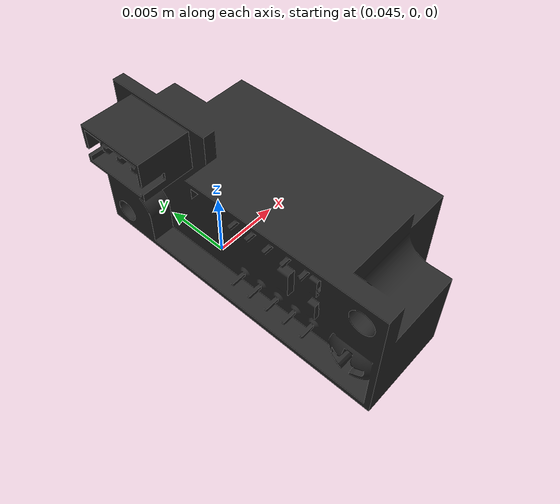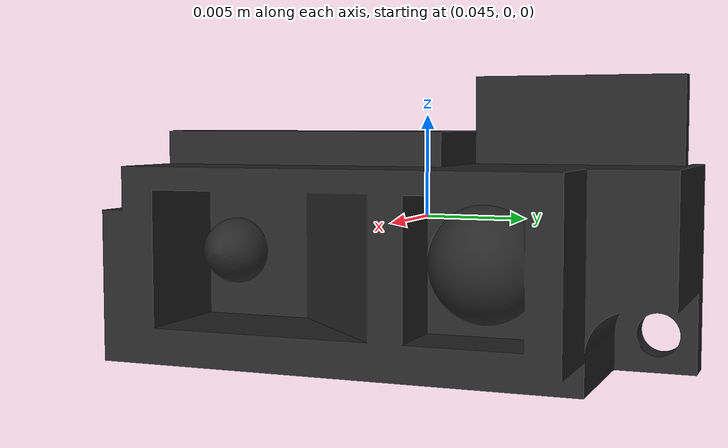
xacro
<?xml version="1.0"?>
<robot name="sharp_robot" xmlns:xacro="http://www.ros.org/wiki/xacro">

  <xacro:arg name="hardware_type" default="mockup"/>
  <xacro:arg name="serial_port"   default="/dev/ttyUSB0"/>

  <link name="base_link"/>

  <link name="sharp_sensor_frame">
    <visual>
      <origin xyz="-0.022073 -0.000618 -0.018921" rpy="0 0 1.5708"/>
      <geometry>
        <mesh filename="package://rangingrob_description/mesh/sharp_gp2y0a51sk0f.stl"
              scale="0.001 0.001 0.001"/>
      </geometry>
      <material name="dark_grey">
        <color rgba="0.15 0.15 0.15 1.0"/>
      </material>
    </visual>
    <collision>
      <geometry>
        <box size="0.008 0.0175 0.008"/>
      </geometry>
    </collision>
    <inertial>
      <mass value="0.0015"/>
      <inertia ixx="1e-7" ixy="0" ixz="0" iyy="1e-7" iyz="0" izz="1e-7"/>
    </inertial>
  </link>

  <joint name="sensor_joint" type="fixed">
    <parent link="base_link"/>
    <child link="sharp_sensor_frame"/>
    <!-- Le capteur pointe vers +X depuis l'avant du robot -->
    <origin xyz="0.05 0.0 0.0" rpy="0.0 0.0 0.0"/>
  </joint>

  <!-- Inclusion du bloc ros2_control selon le type de hardware -->
  <xacro:include filename="$(find rangingrob_description)/urdf/ros2_control_$(arg hardware_type).urdf.xacro"/>

</robot>
